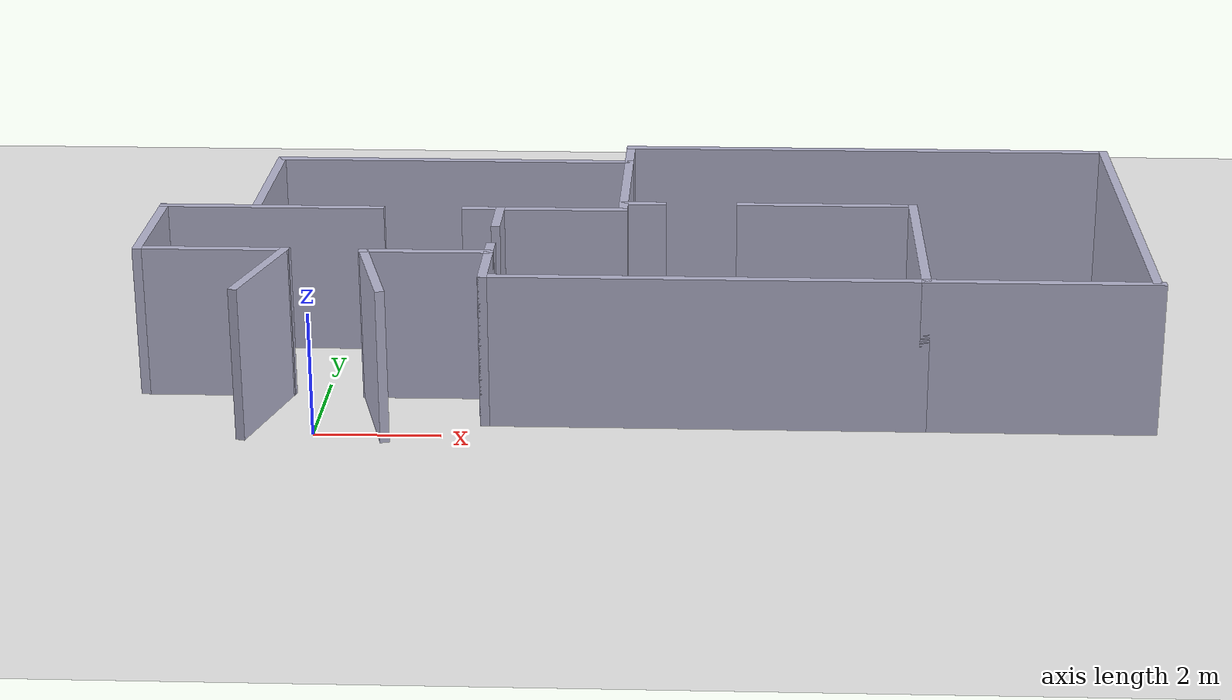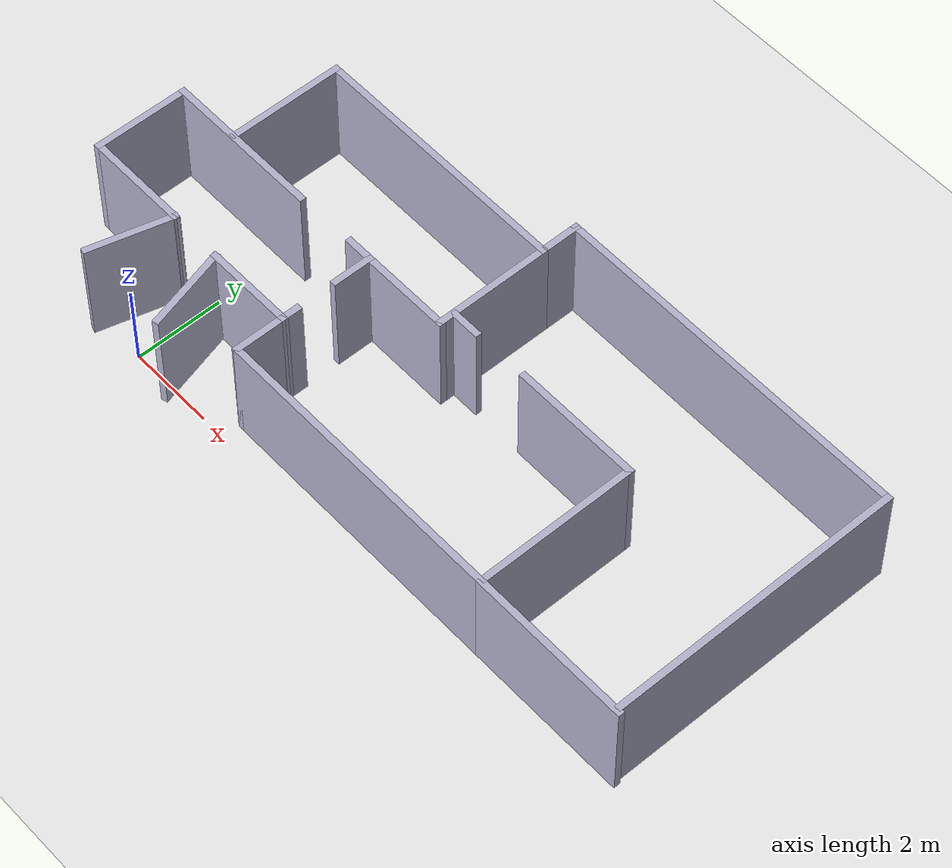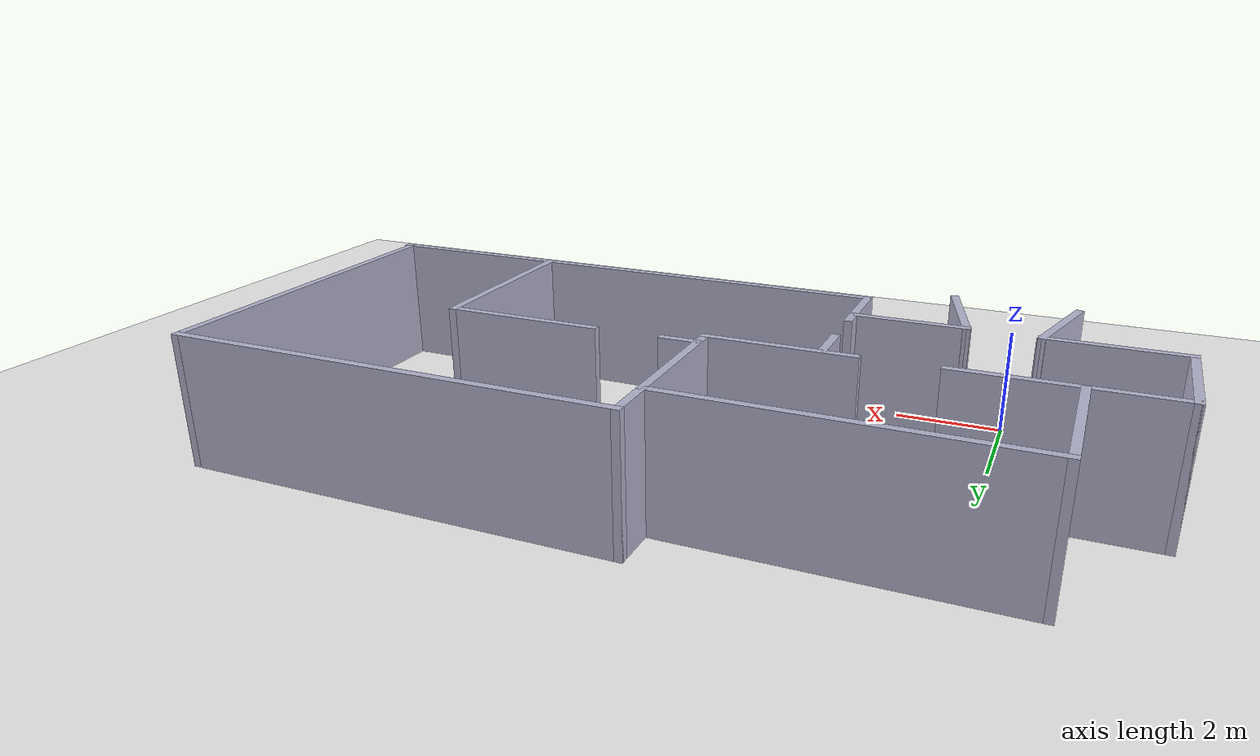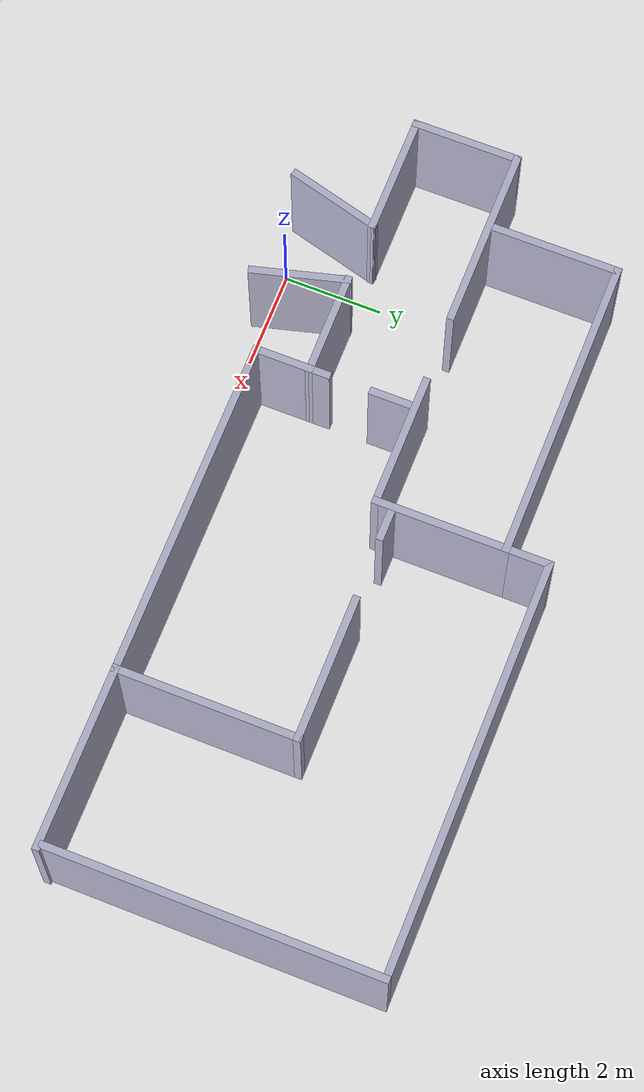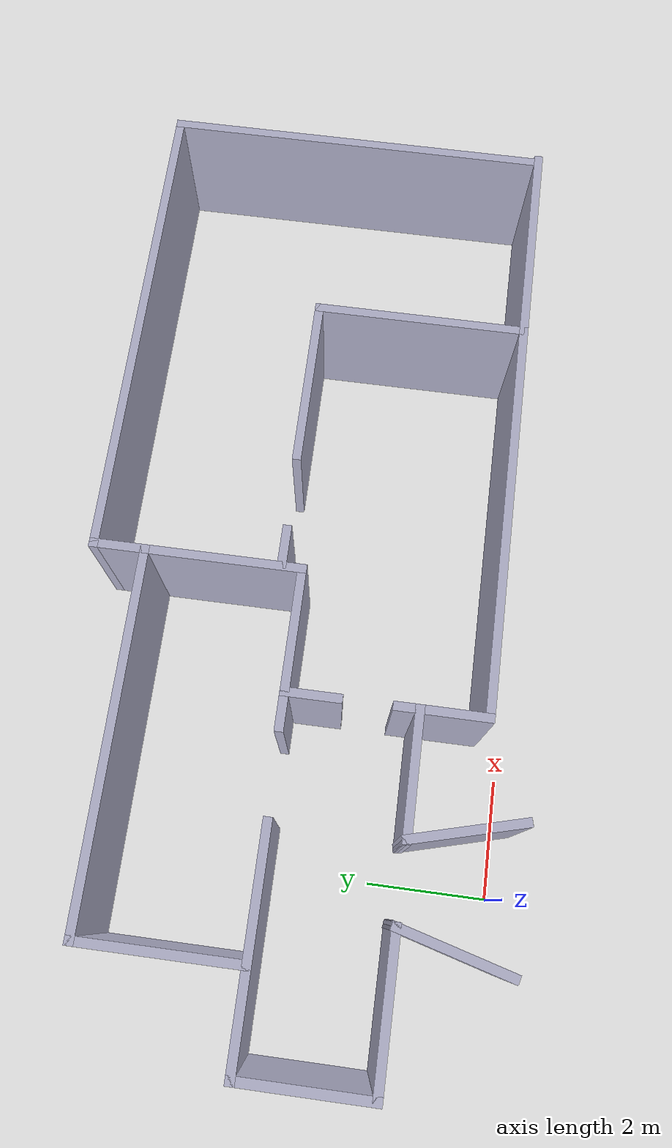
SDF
<sdf version="1.6">
 <world name="default">
  <plugin name="gazebo_occupancy_map" filename="libgazebo_2Dmap_plugin.so">
   <map_resolution>0.1</map_resolution>
   <map_height>0.04</map_height>
   <map_z>0.0</map_z>
   <map_size_x>30</map_size_x>
   <map_size_y>30</map_size_y>
  </plugin>
  <light name="sun" type="directional">
   <cast_shadows>0</cast_shadows>
   <pose>0 0 10 0 -0 0</pose>
   <diffuse>0.8 0.8 0.8 1</diffuse>
   <specular>0.2 0.2 0.2 1</specular>
   <attenuation>
    <range>1000</range>
    <constant>0.9</constant>
    <linear>0.01</linear>
    <quadratic>0.001</quadratic>
   </attenuation>
   <direction>-0.5 0.1 -0.9</direction>
  </light>
  <model name="ground_plane">
   <static>1</static>
   <link name="link">
    <collision name="collision">
     <geometry><plane><normal>0 0 1</normal><size>100 100</size></plane></geometry>
     <surface>
      <contact><collide_bitmask>65535</collide_bitmask></contact>
      <friction><ode><mu>100</mu><mu2>50</mu2></ode></friction>
     </surface>
    </collision>
    <visual name="visual">
     <cast_shadows>0</cast_shadows>
     <geometry><plane><normal>0 0 1</normal><size>100 100</size></plane></geometry>
     <material>
      <script><uri>file://media/materials/scripts/gazebo.material</uri><name>Gazebo/White</name></script>
     </material>
    </visual>
   </link>
  </model>
  <gravity>0 0 -9.8</gravity>
  <magnetic_field>6e-06 2.3e-05 -4.2e-05</magnetic_field>
  <atmosphere type="adiabatic"/>
  <physics name="default_physics" default="0" type="ode">
   <max_step_size>0.001</max_step_size>
   <real_time_factor>1</real_time_factor>
   <real_time_update_rate>1000</real_time_update_rate>
  </physics>
  <scene><ambient>0.4 0.4 0.4 1</ambient><background>0.7 0.7 0.7 1</background><shadows>1</shadows></scene>
  <audio><device>default</device></audio>
  <spherical_coordinates>
   <surface_model>EARTH_WGS84</surface_model>
   <latitude_deg>0</latitude_deg>
   <longitude_deg>0</longitude_deg>
   <elevation>0</elevation>
   <heading_deg>0</heading_deg>
  </spherical_coordinates>
  <model name="TestBuilding">
   <pose>5.07212 3.4626 0 0 -0 0</pose>
   <link name="Wall_0">
    <collision name="Wall_0_Collision">
     <geometry><box><size>2 0.15 2.5</size></box></geometry>
     <pose>0 0 1.25 0 -0 0</pose>
    </collision>
    <visual name="Wall_0_Visual">
     <pose>0 0 1.25 0 -0 0</pose>
     <geometry><box><size>2 0.15 2.5</size></box></geometry>
     <material>
      <shader type="vertex"><normal_map>__default__</normal_map></shader>
      <ambient>0.7 0.7 0.8 1</ambient>
      <diffuse>0.7 0.7 0.8 1</diffuse>
      <specular>0 0 0 0</specular>
     </material>
     <meta><layer>0</layer></meta>
    </visual>
    <pose>-5.91713 -2.77058 0 0 -0 1.309</pose>
   </link>
   <link name="Wall_1">
    <collision name="Wall_1_Collision">
     <geometry><box><size>2.5 0.15 2.5</size></box></geometry>
     <pose>0 0 1.25 0 -0 0</pose>
    </collision>
    <visual name="Wall_1_Visual">
     <pose>0 0 1.25 0 -0 0</pose>
     <geometry><box><size>2.5 0.15 2.5</size></box></geometry>
     <material>
      <shader type="vertex"><normal_map>__default__</normal_map></shader>
      <ambient>0.7 0.7 0.8 1</ambient>
      <diffuse>0.7 0.7 0.8 1</diffuse>
      <specular>0 0 0 0</specular>
     </material>
     <meta><layer>0</layer></meta>
    </visual>
    <pose>-6.85272 -1.8771 0 0 -0 3.14159</pose>
   </link>
   <link name="Wall_10">
    <collision name="Wall_10_Collision">
     <geometry><box><size>2.75 0.15 2.5</size></box></geometry>
     <pose>0 0 1.25 0 -0 0</pose>
    </collision>
    <visual name="Wall_10_Visual">
     <pose>0 0 1.25 0 -0 0</pose>
     <geometry><box><size>2.75 0.15 2.5</size></box></geometry>
     <material>
      <shader type="vertex"><normal_map>__default__</normal_map></shader>
      <ambient>0.7 0.7 0.8 1</ambient>
      <diffuse>0.7 0.7 0.8 1</diffuse>
      <specular>0 0 0 0</specular>
     </material>
     <meta><layer>0</layer></meta>
    </visual>
    <pose>-0.385218 1.55299 0 0 -0 -1.5708</pose>
   </link>
   <link name="Wall_11">
    <collision name="Wall_11_Collision">
     <geometry><box><size>2.75 0.15 2.5</size></box></geometry>
     <pose>0 0 1.25 0 -0 0</pose>
    </collision>
    <visual name="Wall_11_Visual">
     <pose>0 0 1.25 0 -0 0</pose>
     <geometry><box><size>2.75 0.15 2.5</size></box></geometry>
     <material>
      <shader type="vertex"><normal_map>__default__</normal_map></shader>
      <ambient>0.7 0.7 0.8 1</ambient>
      <diffuse>0.7 0.7 0.8 1</diffuse>
      <specular>0 0 0 0</specular>
     </material>
     <meta><layer>0</layer></meta>
    </visual>
    <pose>-1.68522 0.252985 0 0 -0 3.14159</pose>
   </link>
   <link name="Wall_13">
    <collision name="Wall_13_Collision">
     <geometry><box><size>2 0.15 2.5</size></box></geometry>
     <pose>0 0 1.25 0 -0 0</pose>
    </collision>
    <visual name="Wall_13_Visual">
     <pose>0 0 1.25 0 -0 0</pose>
     <geometry><box><size>2 0.15 2.5</size></box></geometry>
     <material>
      <shader type="vertex"><normal_map>__default__</normal_map></shader>
      <ambient>0.7 0.7 0.8 1</ambient>
      <diffuse>0.7 0.7 0.8 1</diffuse>
      <specular>0 0 0 0</specular>
     </material>
     <meta><layer>0</layer></meta>
    </visual>
    <pose>-4.17411 -2.79265 0 0 -0 -1.309</pose>
   </link>
   <link name="Wall_15">
    <collision name="Wall_15_Collision">
     <geometry><box><size>1 0.15 2.5</size></box></geometry>
     <pose>0 0 1.25 0 -0 0</pose>
    </collision>
    <visual name="Wall_15_Visual">
     <pose>0 0 1.25 0 -0 0</pose>
     <geometry><box><size>1 0.15 2.5</size></box></geometry>
     <material>
      <shader type="vertex"><normal_map>__default__</normal_map></shader>
      <ambient>0.7 0.7 0.8 1</ambient>
      <diffuse>0.7 0.7 0.8 1</diffuse>
      <specular>0 0 0 0</specular>
     </material>
     <meta><layer>0</layer></meta>
    </visual>
    <pose>-2.42228 -0.172015 0 0 -0 -1.5708</pose>
   </link>
   <link name="Wall_17">
    <collision name="Wall_17_Collision">
     <geometry><box><size>0.5 0.15 2.5</size></box></geometry>
     <pose>0 0 1.25 0 -0 0</pose>
    </collision>
    <visual name="Wall_17_Visual">
     <pose>0 0 1.25 0 -0 0</pose>
     <geometry><box><size>0.5 0.15 2.5</size></box></geometry>
     <material>
      <shader type="vertex"><normal_map>__default__</normal_map></shader>
      <ambient>0.7 0.7 0.8 1</ambient>
      <diffuse>0.7 0.7 0.8 1</diffuse>
      <specular>0 0 0 0</specular>
     </material>
     <meta><layer>0</layer></meta>
    </visual>
    <pose>-2.42228 -1.71212 0 0 -0 -1.5708</pose>
   </link>
   <link name="Wall_18">
    <collision name="Wall_18_Collision">
     <geometry><box><size>2.14128 0.15 2.5</size></box></geometry>
     <pose>0 0 1.25 0 -0 0</pose>
    </collision>
    <visual name="Wall_18_Visual">
     <pose>0 0 1.25 0 -0 0</pose>
     <geometry><box><size>2.14128 0.15 2.5</size></box></geometry>
     <material>
      <shader type="vertex"><normal_map>__default__</normal_map></shader>
      <ambient>0.7 0.7 0.8 1</ambient>
      <diffuse>0.7 0.7 0.8 1</diffuse>
      <specular>0 0 0 0</specular>
     </material>
     <meta><layer>0</layer></meta>
    </visual>
    <pose>-3.4179 -1.89315 0 0 -0 -3.13554</pose>
   </link>
   <link name="Wall_20">
    <collision name="Wall_20_Collision">
     <geometry><box><size>1.25 0.15 2.5</size></box></geometry>
     <pose>0 0 1.25 0 -0 0</pose>
    </collision>
    <visual name="Wall_20_Visual">
     <pose>0 0 1.25 0 -0 0</pose>
     <geometry><box><size>1.25 0.15 2.5</size></box></geometry>
     <material>
      <shader type="vertex"><normal_map>__default__</normal_map></shader>
      <ambient>0.7 0.7 0.8 1</ambient>
      <diffuse>0.7 0.7 0.8 1</diffuse>
      <specular>0 0 0 0</specular>
     </material>
     <meta><layer>0</layer></meta>
    </visual>
    <pose>-2.42228 -2.43712 0 0 -0 -1.5708</pose>
   </link>
   <link name="Wall_21">
    <collision name="Wall_21_Collision">
     <geometry><box><size>7 0.15 2.5</size></box></geometry>
     <pose>0 0 1.25 0 -0 0</pose>
    </collision>
    <visual name="Wall_21_Visual">
     <pose>0 0 1.25 0 -0 0</pose>
     <geometry><box><size>7 0.15 2.5</size></box></geometry>
     <material>
      <shader type="vertex"><normal_map>__default__</normal_map></shader>
      <ambient>0.7 0.7 0.8 1</ambient>
      <diffuse>0.7 0.7 0.8 1</diffuse>
      <specular>0 0 0 0</specular>
     </material>
     <meta><layer>0</layer></meta>
    </visual>
    <pose>1.00272 -2.98712 0 0 -0 0</pose>
   </link>
   <link name="Wall_22">
    <collision name="Wall_22_Collision">
     <geometry><box><size>3.75 0.15 2.5</size></box></geometry>
     <pose>0 0 1.25 0 -0 0</pose>
    </collision>
    <visual name="Wall_22_Visual">
     <pose>0 0 1.25 0 -0 0</pose>
     <geometry><box><size>3.75 0.15 2.5</size></box></geometry>
     <material>
      <shader type="vertex"><normal_map>__default__</normal_map></shader>
      <ambient>0.7 0.7 0.8 1</ambient>
      <diffuse>0.7 0.7 0.8 1</diffuse>
      <specular>0 0 0 0</specular>
     </material>
     <meta><layer>0</layer></meta>
    </visual>
    <pose>4.42772 -1.18712 0 0 -0 1.5708</pose>
   </link>
   <link name="Wall_23">
    <collision name="Wall_23_Collision">
     <geometry><box><size>3 0.15 2.5</size></box></geometry>
     <pose>0 0 1.25 0 -0 0</pose>
    </collision>
    <visual name="Wall_23_Visual">
     <pose>0 0 1.25 0 -0 0</pose>
     <geometry><box><size>3 0.15 2.5</size></box></geometry>
     <material>
      <shader type="vertex"><normal_map>__default__</normal_map></shader>
      <ambient>0.7 0.7 0.8 1</ambient>
      <diffuse>0.7 0.7 0.8 1</diffuse>
      <specular>0 0 0 0</specular>
     </material>
     <meta><layer>0</layer></meta>
    </visual>
    <pose>3.00272 0.612877 0 0 -0 3.14159</pose>
   </link>
   <link name="Wall_25">
    <collision name="Wall_25_Collision">
     <geometry><box><size>0.75 0.15 2.5</size></box></geometry>
     <pose>0 0 1.25 0 -0 0</pose>
    </collision>
    <visual name="Wall_25_Visual">
     <pose>0 0 1.25 0 -0 0</pose>
     <geometry><box><size>0.75 0.15 2.5</size></box></geometry>
     <material>
      <shader type="vertex"><normal_map>__default__</normal_map></shader>
      <ambient>0.7 0.7 0.8 1</ambient>
      <diffuse>0.7 0.7 0.8 1</diffuse>
      <specular>0 0 0 0</specular>
     </material>
     <meta><layer>0</layer></meta>
    </visual>
    <pose>-0.050578 0.594916 0 0 -0 0</pose>
   </link>
   <link name="Wall_27">
    <collision name="Wall_27_Collision">
     <geometry><box><size>1 0.15 2.5</size></box></geometry>
     <pose>0 0 1.25 0 -0 0</pose>
    </collision>
    <visual name="Wall_27_Visual">
     <pose>0 0 1.25 0 -0 0</pose>
     <geometry><box><size>1 0.15 2.5</size></box></geometry>
     <material>
      <shader type="vertex"><normal_map>__default__</normal_map></shader>
      <ambient>0.7 0.7 0.8 1</ambient>
      <diffuse>0.7 0.7 0.8 1</diffuse>
      <specular>0 0 0 0</specular>
     </material>
     <meta><layer>0</layer></meta>
    </visual>
    <pose>-0.385218 3.27799 0 0 -0 1.5708</pose>
   </link>
   <link name="Wall_28">
    <collision name="Wall_28_Collision">
     <geometry><box><size>8.5 0.15 2.5</size></box></geometry>
     <pose>0 0 1.25 0 -0 0</pose>
    </collision>
    <visual name="Wall_28_Visual">
     <pose>0 0 1.25 0 -0 0</pose>
     <geometry><box><size>8.5 0.15 2.5</size></box></geometry>
     <material>
      <shader type="vertex"><normal_map>__default__</normal_map></shader>
      <ambient>0.7 0.7 0.8 1</ambient>
      <diffuse>0.7 0.7 0.8 1</diffuse>
      <specular>0 0 0 0</specular>
     </material>
     <meta><layer>0</layer></meta>
    </visual>
    <pose>3.78978 3.70298 0 0 -0 0</pose>
   </link>
   <link name="Wall_29">
    <collision name="Wall_29_Collision">
     <geometry><box><size>6.75 0.15 2.5</size></box></geometry>
     <pose>0 0 1.25 0 -0 0</pose>
    </collision>
    <visual name="Wall_29_Visual">
     <pose>0 0 1.25 0 -0 0</pose>
     <geometry><box><size>6.75 0.15 2.5</size></box></geometry>
     <material>
      <shader type="vertex"><normal_map>__default__</normal_map></shader>
      <ambient>0.7 0.7 0.8 1</ambient>
      <diffuse>0.7 0.7 0.8 1</diffuse>
      <specular>0 0 0 0</specular>
     </material>
     <meta><layer>0</layer></meta>
    </visual>
    <pose>7.96478 0.402985 0 0 -0 -1.5708</pose>
   </link>
   <link name="Wall_31">
    <collision name="Wall_31_Collision">
     <geometry><box><size>3.75 0.15 2.5</size></box></geometry>
     <pose>0 0 1.25 0 -0 0</pose>
    </collision>
    <visual name="Wall_31_Visual">
     <pose>0 0 1.25 0 -0 0</pose>
     <geometry><box><size>3.75 0.15 2.5</size></box></geometry>
     <material>
      <shader type="vertex"><normal_map>__default__</normal_map></shader>
      <ambient>0.7 0.7 0.8 1</ambient>
      <diffuse>0.7 0.7 0.8 1</diffuse>
      <specular>0 0 0 0</specular>
     </material>
     <meta><layer>0</layer></meta>
    </visual>
    <pose>6.22772 -2.98712 0 0 -0 0</pose>
   </link>
   <link name="Wall_5">
    <collision name="Wall_5_Collision">
     <geometry><box><size>2.25 0.15 2.5</size></box></geometry>
     <pose>0 0 1.25 0 -0 0</pose>
    </collision>
    <visual name="Wall_5_Visual">
     <pose>0 0 1.25 0 -0 0</pose>
     <geometry><box><size>2.25 0.15 2.5</size></box></geometry>
     <material>
      <shader type="vertex"><normal_map>__default__</normal_map></shader>
      <ambient>0.7 0.7 0.8 1</ambient>
      <diffuse>0.7 0.7 0.8 1</diffuse>
      <specular>0 0 0 0</specular>
     </material>
     <meta><layer>0</layer></meta>
    </visual>
    <pose>-8.02772 -0.827101 0 0 -0 1.5708</pose>
   </link>
   <link name="Wall_6">
    <collision name="Wall_6_Collision">
     <geometry><box><size>3.75 0.15 2.5</size></box></geometry>
     <pose>0 0 1.25 0 -0 0</pose>
    </collision>
    <visual name="Wall_6_Visual">
     <pose>0 0 1.25 0 -0 0</pose>
     <geometry><box><size>3.75 0.15 2.5</size></box></geometry>
     <material>
      <shader type="vertex"><normal_map>__default__</normal_map></shader>
      <ambient>0.7 0.7 0.8 1</ambient>
      <diffuse>0.7 0.7 0.8 1</diffuse>
      <specular>0 0 0 0</specular>
     </material>
     <meta><layer>0</layer></meta>
    </visual>
    <pose>-6.22772 0.222899 0 0 -0 0</pose>
   </link>
   <link name="Wall_8">
    <collision name="Wall_8_Collision">
     <geometry><box><size>2.75 0.15 2.5</size></box></geometry>
     <pose>0 0 1.25 0 -0 0</pose>
    </collision>
    <visual name="Wall_8_Visual">
     <pose>0 0 1.25 0 -0 0</pose>
     <geometry><box><size>2.75 0.15 2.5</size></box></geometry>
     <material>
      <shader type="vertex"><normal_map>__default__</normal_map></shader>
      <ambient>0.7 0.7 0.8 1</ambient>
      <diffuse>0.7 0.7 0.8 1</diffuse>
      <specular>0 0 0 0</specular>
     </material>
     <meta><layer>0</layer></meta>
    </visual>
    <pose>-6.48522 1.55299 0 0 -0 1.5708</pose>
   </link>
   <link name="Wall_9">
    <collision name="Wall_9_Collision">
     <geometry><box><size>6.25 0.15 2.5</size></box></geometry>
     <pose>0 0 1.25 0 -0 0</pose>
    </collision>
    <visual name="Wall_9_Visual">
     <pose>0 0 1.25 0 -0 0</pose>
     <geometry><box><size>6.25 0.15 2.5</size></box></geometry>
     <material>
      <shader type="vertex"><normal_map>__default__</normal_map></shader>
      <ambient>0.7 0.7 0.8 1</ambient>
      <diffuse>0.7 0.7 0.8 1</diffuse>
      <specular>0 0 0 0</specular>
     </material>
     <meta><layer>0</layer></meta>
    </visual>
    <pose>-3.43522 2.85298 0 0 -0 0</pose>
   </link>
   <static>1</static>
  </model>
  <light name="user_point_light_0" type="point">
   <pose>5.35324 2.18855 1 0 -0 0</pose>
   <diffuse>0.5 0.5 0.5 1</diffuse>
   <specular>0.1 0.1 0.1 1</specular>
   <attenuation>
    <range>20</range>
    <constant>0.5</constant>
    <linear>0.01</linear>
    <quadratic>0.001</quadratic>
   </attenuation>
   <cast_shadows>0</cast_shadows>
   <direction>0 0 -1</direction>
  </light>
 </world>
</sdf>
